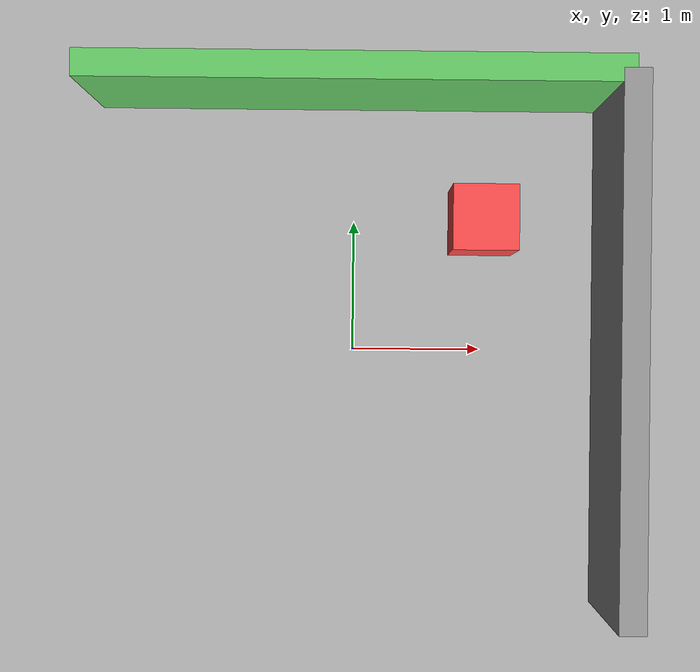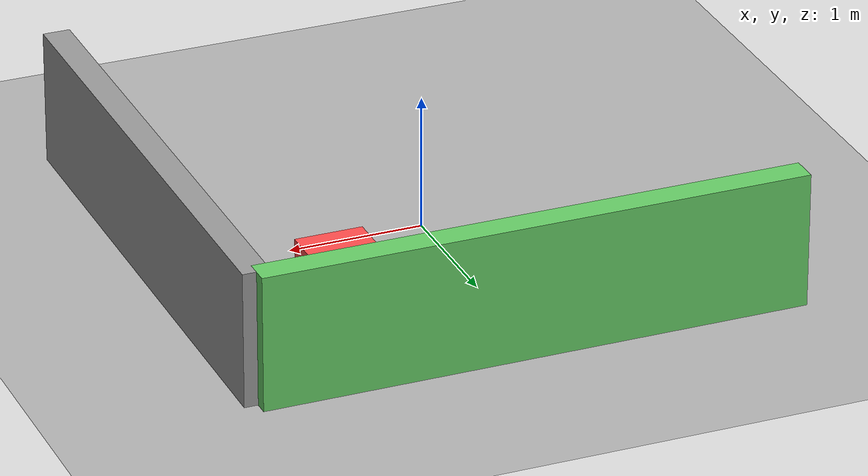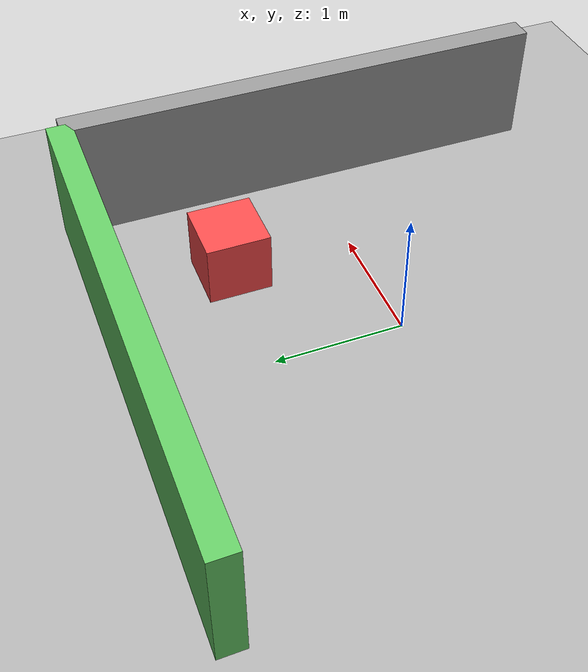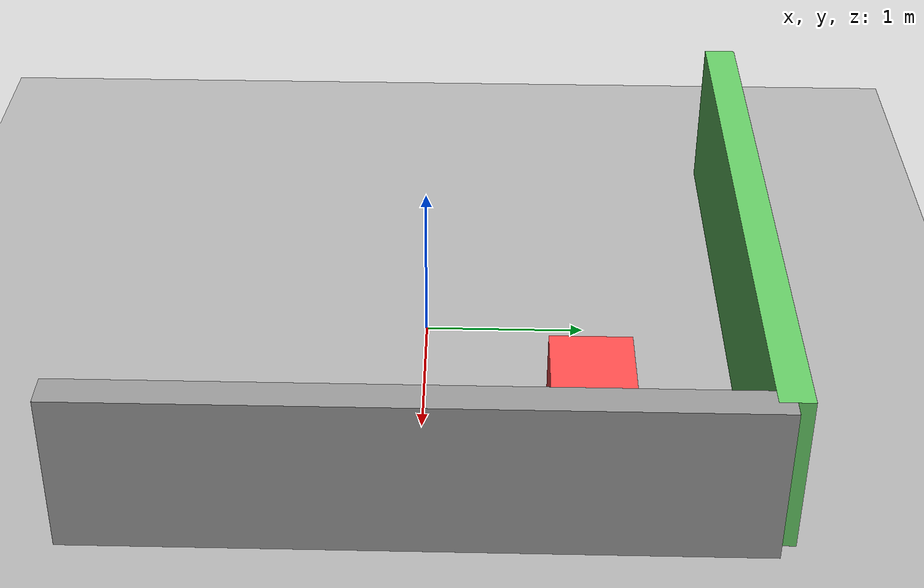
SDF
<?xml version="1.0" ?>
<sdf version="1.7">
  <world name="nav_world">

    <physics name='1ms' type='ignored'>
      <max_step_size>0.001</max_step_size>
      <real_time_factor>1</real_time_factor>
    </physics>

    <plugin
        filename="ignition-gazebo-physics-system"
        name="ignition::gazebo::systems::Physics">
    </plugin>
    <plugin
        filename="ignition-gazebo-user-commands-system"
        name="ignition::gazebo::systems::UserCommands">
    </plugin>
    <plugin
        filename="ignition-gazebo-scene-broadcaster-system"
        name="ignition::gazebo::systems::SceneBroadcaster">
    </plugin>
    <plugin
        filename="ignition-gazebo-sensors-system"
        name="ignition::gazebo::systems::Sensors">
        <render_engine>ogre2</render_engine>
    </plugin>
    <plugin
        filename="ignition-gazebo-contact-system"
        name="ignition::gazebo::systems::Contact">
    </plugin>

    <!-- 基本光源 -->
    <light name="sun" type="directional">
      <cast_shadows>true</cast_shadows>
      <pose>0 0 10 0 0 0</pose>
      <diffuse>1 1 1 1</diffuse>
      <specular>0.1 0.1 0.1 1</specular>
      <direction>-0.5 0.5 -1</direction>
    </light>

    <!-- 地面（自定义 plane，非 Fuel） -->
    <model name="ground_plane">
      <static>true</static>
      <link name="ground_link">
        <collision name="ground_collision">
          <geometry>
            <plane>
              <normal>0 0 1</normal>
              <size>20 20</size>
            </plane>
          </geometry>
        </collision>
        <visual name="ground_visual">
          <geometry>
            <plane>
              <normal>0 0 1</normal>
              <size>20 20</size>
            </plane>
          </geometry>
          <material>
            <ambient>0.5 0.5 0.5 1</ambient>
            <diffuse>0.7 0.7 0.7 1</diffuse>
          </material>
        </visual>
      </link>
    </model>

    <!-- 墙体（前） -->
    <model name="wall_front">
      <pose>2 0 0.5 0 0 0</pose>
      <static>true</static>
      <link name="link">
        <collision name="collision">
          <geometry>
            <box><size>0.2 4 1</size></box>
          </geometry>
        </collision>
        <visual name="visual">
          <geometry>
            <box><size>0.2 4 1</size></box>
          </geometry>
          <material>
            <ambient>0.6 0.6 0.6 1</ambient>
          </material>
        </visual>
      </link>
    </model>

    <!-- 墙体（右） -->
    <model name="wall_right">
      <pose>0 2 0.5 0 0 0</pose>
      <static>true</static>
      <link name="link">
        <collision name="collision">
          <geometry>
            <box><size>4 0.2 1</size></box>
          </geometry>
        </collision>
        <visual name="visual">
          <geometry>
            <box><size>4 0.2 1</size></box>
          </geometry>
          <material>
            <ambient>0.4 0.8 0.4 1</ambient>
          </material>
        </visual>
      </link>
    </model>

    <!-- 障碍 -->
    <model name="box_obstacle">
      <pose>1 1 0.25 0 0 0</pose>
      <static>true</static>
      <link name="link">
        <collision name="collision">
          <geometry>
            <box><size>0.5 0.5 0.5</size></box>
          </geometry>
        </collision>
        <visual name="visual">
          <geometry>
            <box><size>0.5 0.5 0.5</size></box>
          </geometry>
          <material>
            <ambient>1 0.3 0.3 1</ambient>
          </material>
        </visual>
      </link>
    </model>

    <!-- 机器人出生点 -->
    <model name="robot_spawn">
      <pose>0 0 0.01 0 0 0</pose>
      <static>true</static>
      <link name="spawn_link">
        <visual name="dummy">
          <geometry><box><size>0.001 0.001 0.001</size></box></geometry>
        </visual>
      </link>
    </model>

  </world>
</sdf>
